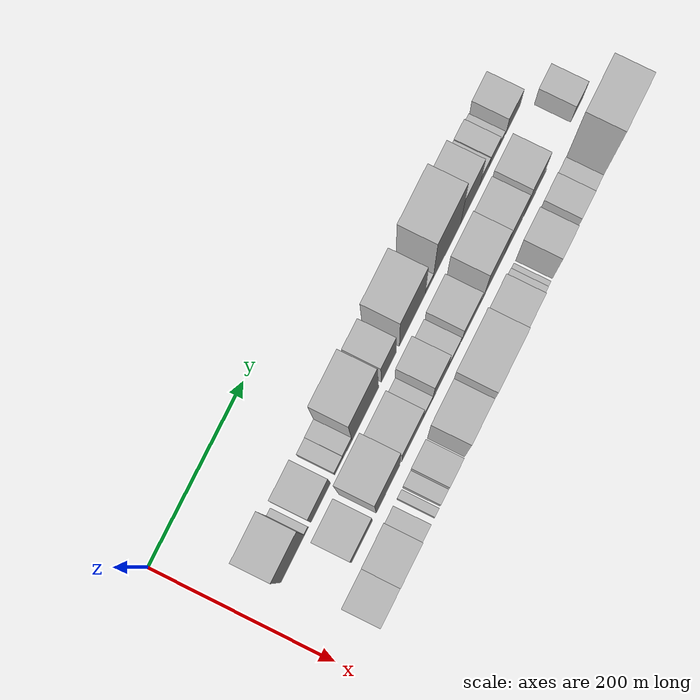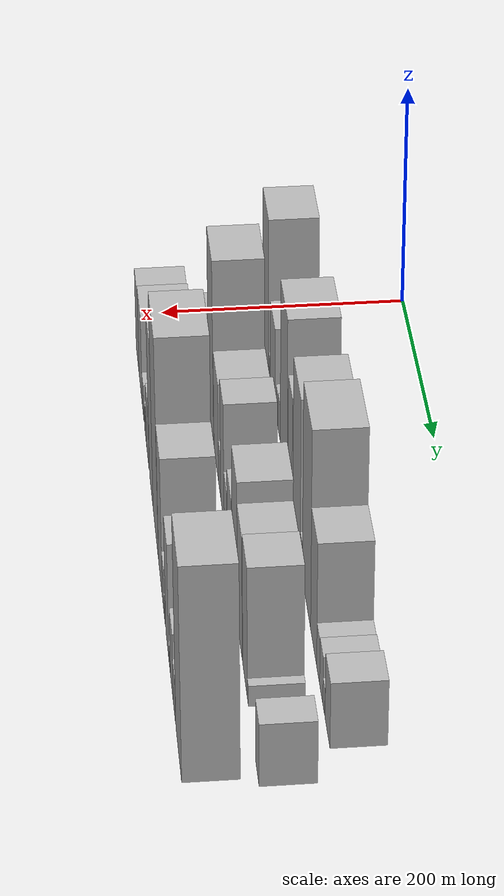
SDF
<sdf version="1.6">
 <world name="default">
  <model name="building_15">
   <static>1</static>
   <pose>100.0000 69.0616 0 0.000000 0.000000 0.000000</pose>
   <link name="link">
    <pose>0 0 70.50 0 0 0</pose>
    <collision name="collision"><geometry><box><size>40.0000 50.3987 141.0000</size></box></geometry></collision>
    <visual name="visual">
     <cast_shadows>0</cast_shadows>
     <geometry><box><size>40.0000 50.3987 141.0000</size></box></geometry>
     <material>
      <script>
       <uri>model://HANNAS_wall/materials/scripts</uri>
       <uri>model://HANNAS_wall/materials/textures</uri>
       <name>vrc/HANNAS_wall</name>
      </script>
     </material>
    </visual>
   </link>
  </model>
  <model name="building_16">
   <static>1</static>
   <pose>100.0000 98.4314 0 0.000000 0.000000 0.000000</pose>
   <link name="link">
    <pose>0 0 9.00 0 0 0</pose>
    <collision name="collision"><geometry><box><size>40.0000 8.3410 18.0000</size></box></geometry></collision>
    <visual name="visual">
     <cast_shadows>0</cast_shadows>
     <geometry><box><size>40.0000 8.3410 18.0000</size></box></geometry>
     <material>
      <script>
       <uri>model://HANNAS_wall/materials/scripts</uri>
       <uri>model://HANNAS_wall/materials/textures</uri>
       <name>vrc/HANNAS_wall</name>
      </script>
     </material>
    </visual>
   </link>
  </model>
  <model name="building_17">
   <static>1</static>
   <pose>100.0000 128.5890 0 0.000000 0.000000 0.000000</pose>
   <link name="link">
    <pose>0 0 37.50 0 0 0</pose>
    <collision name="collision"><geometry><box><size>40.0000 41.9741 75.0000</size></box></geometry></collision>
    <visual name="visual">
     <cast_shadows>0</cast_shadows>
     <geometry><box><size>40.0000 41.9741 75.0000</size></box></geometry>
     <material>
      <script>
       <uri>model://HANNAS_wall/materials/scripts</uri>
       <uri>model://HANNAS_wall/materials/textures</uri>
       <name>vrc/HANNAS_wall</name>
      </script>
     </material>
    </visual>
   </link>
  </model>
  <model name="building_18">
   <static>1</static>
   <pose>100.0000 167.4302 0 0.000000 0.000000 0.000000</pose>
   <link name="link">
    <pose>0 0 15.00 0 0 0</pose>
    <collision name="collision"><geometry><box><size>40.0000 17.7083 30.0000</size></box></geometry></collision>
    <visual name="visual">
     <cast_shadows>0</cast_shadows>
     <geometry><box><size>40.0000 17.7083 30.0000</size></box></geometry>
     <material>
      <script>
       <uri>model://HANNAS_wall/materials/scripts</uri>
       <uri>model://HANNAS_wall/materials/textures</uri>
       <name>vrc/HANNAS_wall</name>
      </script>
     </material>
    </visual>
   </link>
  </model>
  <model name="building_19">
   <static>1</static>
   <pose>100.0000 186.0254 0 0.000000 0.000000 0.000000</pose>
   <link name="link">
    <pose>0 0 16.50 0 0 0</pose>
    <collision name="collision"><geometry><box><size>40.0000 19.4821 33.0000</size></box></geometry></collision>
    <visual name="visual">
     <cast_shadows>0</cast_shadows>
     <geometry><box><size>40.0000 19.4821 33.0000</size></box></geometry>
     <material>
      <script>
       <uri>model://HANNAS_wall/materials/scripts</uri>
       <uri>model://HANNAS_wall/materials/textures</uri>
       <name>vrc/HANNAS_wall</name>
      </script>
     </material>
    </visual>
   </link>
  </model>
  <model name="building_20">
   <static>1</static>
   <pose>100.0000 224.3693 0 0.000000 0.000000 0.000000</pose>
   <link name="link">
    <pose>0 0 75.00 0 0 0</pose>
    <collision name="collision"><geometry><box><size>40.0000 57.2055 150.0000</size></box></geometry></collision>
    <visual name="visual">
     <cast_shadows>0</cast_shadows>
     <geometry><box><size>40.0000 57.2055 150.0000</size></box></geometry>
     <material>
      <script>
       <uri>model://HANNAS_wall/materials/scripts</uri>
       <uri>model://HANNAS_wall/materials/textures</uri>
       <name>vrc/HANNAS_wall</name>
      </script>
     </material>
    </visual>
   </link>
  </model>
  <model name="building_21">
   <static>1</static>
   <pose>100.0000 275.0208 0 0.000000 0.000000 0.000000</pose>
   <link name="link">
    <pose>0 0 52.50 0 0 0</pose>
    <collision name="collision"><geometry><box><size>40.0000 32.0976 105.0000</size></box></geometry></collision>
    <visual name="visual">
     <cast_shadows>0</cast_shadows>
     <geometry><box><size>40.0000 32.0976 105.0000</size></box></geometry>
     <material>
      <script>
       <uri>model://HANNAS_wall/materials/scripts</uri>
       <uri>model://HANNAS_wall/materials/textures</uri>
       <name>vrc/HANNAS_wall</name>
      </script>
     </material>
    </visual>
   </link>
  </model>
  <model name="building_22">
   <static>1</static>
   <pose>100.0000 326.3163 0 0.000000 0.000000 0.000000</pose>
   <link name="link">
    <pose>0 0 73.50 0 0 0</pose>
    <collision name="collision"><geometry><box><size>40.0000 56.4934 147.0000</size></box></geometry></collision>
    <visual name="visual">
     <cast_shadows>0</cast_shadows>
     <geometry><box><size>40.0000 56.4934 147.0000</size></box></geometry>
     <material>
      <script>
       <uri>model://HANNAS_wall/materials/scripts</uri>
       <uri>model://HANNAS_wall/materials/textures</uri>
       <name>vrc/HANNAS_wall</name>
      </script>
     </material>
    </visual>
   </link>
  </model>
  <model name="building_23">
   <static>1</static>
   <pose>100.0000 363.0550 0 0.000000 0.000000 0.000000</pose>
   <link name="link">
    <pose>0 0 15.00 0 0 0</pose>
    <collision name="collision"><geometry><box><size>40.0000 16.9841 30.0000</size></box></geometry></collision>
    <visual name="visual">
     <cast_shadows>0</cast_shadows>
     <geometry><box><size>40.0000 16.9841 30.0000</size></box></geometry>
     <material>
      <script>
       <uri>model://HANNAS_wall/materials/scripts</uri>
       <uri>model://HANNAS_wall/materials/textures</uri>
       <name>vrc/HANNAS_wall</name>
      </script>
     </material>
    </visual>
   </link>
  </model>
  <model name="building_24">
   <static>1</static>
   <pose>100.0000 401.9607 0 0.000000 0.000000 0.000000</pose>
   <link name="link">
    <pose>0 0 87.00 0 0 0</pose>
    <collision name="collision"><geometry><box><size>40.0000 60.8273 174.0000</size></box></geometry></collision>
    <visual name="visual">
     <cast_shadows>0</cast_shadows>
     <geometry><box><size>40.0000 60.8273 174.0000</size></box></geometry>
     <material>
      <script>
       <uri>model://HANNAS_wall/materials/scripts</uri>
       <uri>model://HANNAS_wall/materials/textures</uri>
       <name>vrc/HANNAS_wall</name>
      </script>
     </material>
    </visual>
   </link>
  </model>
  <model name="building_25">
   <static>1</static>
   <pose>100.0000 453.8556 0 0.000000 0.000000 0.000000</pose>
   <link name="link">
    <pose>0 0 54.00 0 0 0</pose>
    <collision name="collision"><geometry><box><size>40.0000 42.9626 108.0000</size></box></geometry></collision>
    <visual name="visual">
     <cast_shadows>0</cast_shadows>
     <geometry><box><size>40.0000 42.9626 108.0000</size></box></geometry>
     <material>
      <script>
       <uri>model://HANNAS_wall/materials/scripts</uri>
       <uri>model://HANNAS_wall/materials/textures</uri>
       <name>vrc/HANNAS_wall</name>
      </script>
     </material>
    </visual>
   </link>
  </model>
  <model name="building_26">
   <static>1</static>
   <pose>100.0000 485.6503 0 0.000000 0.000000 0.000000</pose>
   <link name="link">
    <pose>0 0 19.50 0 0 0</pose>
    <collision name="collision"><geometry><box><size>40.0000 20.6268 39.0000</size></box></geometry></collision>
    <visual name="visual">
     <cast_shadows>0</cast_shadows>
     <geometry><box><size>40.0000 20.6268 39.0000</size></box></geometry>
     <material>
      <script>
       <uri>model://HANNAS_wall/materials/scripts</uri>
       <uri>model://HANNAS_wall/materials/textures</uri>
       <name>vrc/HANNAS_wall</name>
      </script>
     </material>
    </visual>
   </link>
  </model>
  <model name="building_27">
   <static>1</static>
   <pose>100.0000 507.1280 0 0.000000 0.000000 0.000000</pose>
   <link name="link">
    <pose>0 0 21.00 0 0 0</pose>
    <collision name="collision"><geometry><box><size>40.0000 22.3287 42.0000</size></box></geometry></collision>
    <visual name="visual">
     <cast_shadows>0</cast_shadows>
     <geometry><box><size>40.0000 22.3287 42.0000</size></box></geometry>
     <material>
      <script>
       <uri>model://HANNAS_wall/materials/scripts</uri>
       <uri>model://HANNAS_wall/materials/textures</uri>
       <name>vrc/HANNAS_wall</name>
      </script>
     </material>
    </visual>
   </link>
  </model>
  <model name="building_28">
   <static>1</static>
   <pose>100.0000 524.1989 0 0.000000 0.000000 0.000000</pose>
   <link name="link">
    <pose>0 0 12.00 0 0 0</pose>
    <collision name="collision"><geometry><box><size>40.0000 11.8132 24.0000</size></box></geometry></collision>
    <visual name="visual">
     <cast_shadows>0</cast_shadows>
     <geometry><box><size>40.0000 11.8132 24.0000</size></box></geometry>
     <material>
      <script>
       <uri>model://HANNAS_wall/materials/scripts</uri>
       <uri>model://HANNAS_wall/materials/textures</uri>
       <name>vrc/HANNAS_wall</name>
      </script>
     </material>
    </visual>
   </link>
  </model>
  <model name="building_29">
   <static>1</static>
   <pose>100.0000 549.5464 0 0.000000 0.000000 0.000000</pose>
   <link name="link">
    <pose>0 0 28.50 0 0 0</pose>
    <collision name="collision"><geometry><box><size>40.0000 32.8817 57.0000</size></box></geometry></collision>
    <visual name="visual">
     <cast_shadows>0</cast_shadows>
     <geometry><box><size>40.0000 32.8817 57.0000</size></box></geometry>
     <material>
      <script>
       <uri>model://HANNAS_wall/materials/scripts</uri>
       <uri>model://HANNAS_wall/materials/textures</uri>
       <name>vrc/HANNAS_wall</name>
      </script>
     </material>
    </visual>
   </link>
  </model>
  <model name="building_46">
   <static>1</static>
   <pose>152.0000 113.2397 0 0.000000 0.000000 0.000000</pose>
   <link name="link">
    <pose>0 0 37.50 0 0 0</pose>
    <collision name="collision"><geometry><box><size>40.0000 44.7766 75.0000</size></box></geometry></collision>
    <visual name="visual">
     <cast_shadows>0</cast_shadows>
     <geometry><box><size>40.0000 44.7766 75.0000</size></box></geometry>
     <material>
      <script>
       <uri>model://HANNAS_wall/materials/scripts</uri>
       <uri>model://HANNAS_wall/materials/textures</uri>
       <name>vrc/HANNAS_wall</name>
      </script>
     </material>
    </visual>
   </link>
  </model>
  <model name="building_47">
   <static>1</static>
   <pose>152.0000 169.0955 0 0.000000 0.000000 0.000000</pose>
   <link name="link">
    <pose>0 0 84.00 0 0 0</pose>
    <collision name="collision"><geometry><box><size>40.0000 50.9350 168.0000</size></box></geometry></collision>
    <visual name="visual">
     <cast_shadows>0</cast_shadows>
     <geometry><box><size>40.0000 50.9350 168.0000</size></box></geometry>
     <material>
      <script>
       <uri>model://HANNAS_wall/materials/scripts</uri>
       <uri>model://HANNAS_wall/materials/textures</uri>
       <name>vrc/HANNAS_wall</name>
      </script>
     </material>
    </visual>
   </link>
  </model>
  <model name="building_48">
   <static>1</static>
   <pose>152.0000 221.7921 0 0.000000 0.000000 0.000000</pose>
   <link name="link">
    <pose>0 0 45.00 0 0 0</pose>
    <collision name="collision"><geometry><box><size>40.0000 46.4581 90.0000</size></box></geometry></collision>
    <visual name="visual">
     <cast_shadows>0</cast_shadows>
     <geometry><box><size>40.0000 46.4581 90.0000</size></box></geometry>
     <material>
      <script>
       <uri>model://HANNAS_wall/materials/scripts</uri>
       <uri>model://HANNAS_wall/materials/textures</uri>
       <name>vrc/HANNAS_wall</name>
      </script>
     </material>
    </visual>
   </link>
  </model>
  <model name="building_49">
   <static>1</static>
   <pose>152.0000 254.8681 0 0.000000 0.000000 0.000000</pose>
   <link name="link">
    <pose>0 0 19.50 0 0 0</pose>
    <collision name="collision"><geometry><box><size>40.0000 19.6941 39.0000</size></box></geometry></collision>
    <visual name="visual">
     <cast_shadows>0</cast_shadows>
     <geometry><box><size>40.0000 19.6941 39.0000</size></box></geometry>
     <material>
      <script>
       <uri>model://HANNAS_wall/materials/scripts</uri>
       <uri>model://HANNAS_wall/materials/textures</uri>
       <name>vrc/HANNAS_wall</name>
      </script>
     </material>
    </visual>
   </link>
  </model>
  <model name="building_50">
   <static>1</static>
   <pose>152.0000 281.5579 0 0.000000 0.000000 0.000000</pose>
   <link name="link">
    <pose>0 0 54.00 0 0 0</pose>
    <collision name="collision"><geometry><box><size>40.0000 33.6855 108.0000</size></box></geometry></collision>
    <visual name="visual">
     <cast_shadows>0</cast_shadows>
     <geometry><box><size>40.0000 33.6855 108.0000</size></box></geometry>
     <material>
      <script>
       <uri>model://HANNAS_wall/materials/scripts</uri>
       <uri>model://HANNAS_wall/materials/textures</uri>
       <name>vrc/HANNAS_wall</name>
      </script>
     </material>
    </visual>
   </link>
  </model>
  <model name="building_51">
   <static>1</static>
   <pose>152.0000 312.1706 0 0.000000 0.000000 0.000000</pose>
   <link name="link">
    <pose>0 0 24.00 0 0 0</pose>
    <collision name="collision"><geometry><box><size>40.0000 27.5398 48.0000</size></box></geometry></collision>
    <visual name="visual">
     <cast_shadows>0</cast_shadows>
     <geometry><box><size>40.0000 27.5398 48.0000</size></box></geometry>
     <material>
      <script>
       <uri>model://HANNAS_wall/materials/scripts</uri>
       <uri>model://HANNAS_wall/materials/textures</uri>
       <name>vrc/HANNAS_wall</name>
      </script>
     </material>
    </visual>
   </link>
  </model>
  <model name="building_52">
   <static>1</static>
   <pose>152.0000 349.2109 0 0.000000 0.000000 0.000000</pose>
   <link name="link">
    <pose>0 0 36.00 0 0 0</pose>
    <collision name="collision"><geometry><box><size>40.0000 40.5409 72.0000</size></box></geometry></collision>
    <visual name="visual">
     <cast_shadows>0</cast_shadows>
     <geometry><box><size>40.0000 40.5409 72.0000</size></box></geometry>
     <material>
      <script>
       <uri>model://HANNAS_wall/materials/scripts</uri>
       <uri>model://HANNAS_wall/materials/textures</uri>
       <name>vrc/HANNAS_wall</name>
      </script>
     </material>
    </visual>
   </link>
  </model>
  <model name="building_53">
   <static>1</static>
   <pose>152.0000 372.8206 0 0.000000 0.000000 0.000000</pose>
   <link name="link">
    <pose>0 0 7.50 0 0 0</pose>
    <collision name="collision"><geometry><box><size>40.0000 6.6785 15.0000</size></box></geometry></collision>
    <visual name="visual">
     <cast_shadows>0</cast_shadows>
     <geometry><box><size>40.0000 6.6785 15.0000</size></box></geometry>
     <material>
      <script>
       <uri>model://HANNAS_wall/materials/scripts</uri>
       <uri>model://HANNAS_wall/materials/textures</uri>
       <name>vrc/HANNAS_wall</name>
      </script>
     </material>
    </visual>
   </link>
  </model>
  <model name="building_54">
   <static>1</static>
   <pose>152.0000 399.4634 0 0.000000 0.000000 0.000000</pose>
   <link name="link">
    <pose>0 0 63.00 0 0 0</pose>
    <collision name="collision"><geometry><box><size>40.0000 46.6072 126.0000</size></box></geometry></collision>
    <visual name="visual">
     <cast_shadows>0</cast_shadows>
     <geometry><box><size>40.0000 46.6072 126.0000</size></box></geometry>
     <material>
      <script>
       <uri>model://HANNAS_wall/materials/scripts</uri>
       <uri>model://HANNAS_wall/materials/textures</uri>
       <name>vrc/HANNAS_wall</name>
      </script>
     </material>
    </visual>
   </link>
  </model>
  <model name="building_55">
   <static>1</static>
   <pose>152.0000 443.1474 0 0.000000 0.000000 0.000000</pose>
   <link name="link">
    <pose>0 0 54.00 0 0 0</pose>
    <collision name="collision"><geometry><box><size>40.0000 40.7608 108.0000</size></box></geometry></collision>
    <visual name="visual">
     <cast_shadows>0</cast_shadows>
     <geometry><box><size>40.0000 40.7608 108.0000</size></box></geometry>
     <material>
      <script>
       <uri>model://HANNAS_wall/materials/scripts</uri>
       <uri>model://HANNAS_wall/materials/textures</uri>
       <name>vrc/HANNAS_wall</name>
      </script>
     </material>
    </visual>
   </link>
  </model>
  <model name="building_56">
   <static>1</static>
   <pose>152.0000 487.0982 0 0.000000 0.000000 0.000000</pose>
   <link name="link">
    <pose>0 0 57.00 0 0 0</pose>
    <collision name="collision"><geometry><box><size>40.0000 39.1408 114.0000</size></box></geometry></collision>
    <visual name="visual">
     <cast_shadows>0</cast_shadows>
     <geometry><box><size>40.0000 39.1408 114.0000</size></box></geometry>
     <material>
      <script>
       <uri>model://HANNAS_wall/materials/scripts</uri>
       <uri>model://HANNAS_wall/materials/textures</uri>
       <name>vrc/HANNAS_wall</name>
      </script>
     </material>
    </visual>
   </link>
  </model>
  <model name="building_57">
   <static>1</static>
   <pose>152.0000 511.1476 0 0.000000 0.000000 0.000000</pose>
   <link name="link">
    <pose>0 0 9.00 0 0 0</pose>
    <collision name="collision"><geometry><box><size>40.0000 8.9579 18.0000</size></box></geometry></collision>
    <visual name="visual">
     <cast_shadows>0</cast_shadows>
     <geometry><box><size>40.0000 8.9579 18.0000</size></box></geometry>
     <material>
      <script>
       <uri>model://HANNAS_wall/materials/scripts</uri>
       <uri>model://HANNAS_wall/materials/textures</uri>
       <name>vrc/HANNAS_wall</name>
      </script>
     </material>
    </visual>
   </link>
  </model>
  <model name="building_58">
   <static>1</static>
   <pose>152.0000 587.4810 0 0.000000 0.000000 0.000000</pose>
   <link name="link">
    <pose>0 0 27.00 0 0 0</pose>
    <collision name="collision"><geometry><box><size>40.0000 27.9030 54.0000</size></box></geometry></collision>
    <visual name="visual">
     <cast_shadows>0</cast_shadows>
     <geometry><box><size>40.0000 27.9030 54.0000</size></box></geometry>
     <material>
      <script>
       <uri>model://HANNAS_wall/materials/scripts</uri>
       <uri>model://HANNAS_wall/materials/textures</uri>
       <name>vrc/HANNAS_wall</name>
      </script>
     </material>
    </visual>
   </link>
  </model>
  <model name="building_73">
   <static>1</static>
   <pose>204.0000 69.9652 0 0.000000 0.000000 0.000000</pose>
   <link name="link">
    <pose>0 0 37.50 0 0 0</pose>
    <collision name="collision"><geometry><box><size>40.0000 40.5713 75.0000</size></box></geometry></collision>
    <visual name="visual">
     <cast_shadows>0</cast_shadows>
     <geometry><box><size>40.0000 40.5713 75.0000</size></box></geometry>
     <material>
      <script>
       <uri>model://HANNAS_wall/materials/scripts</uri>
       <uri>model://HANNAS_wall/materials/textures</uri>
       <name>vrc/HANNAS_wall</name>
      </script>
     </material>
    </visual>
   </link>
  </model>
  <model name="building_74">
   <static>1</static>
   <pose>204.0000 113.3974 0 0.000000 0.000000 0.000000</pose>
   <link name="link">
    <pose>0 0 42.00 0 0 0</pose>
    <collision name="collision"><geometry><box><size>40.0000 46.2930 84.0000</size></box></geometry></collision>
    <visual name="visual">
     <cast_shadows>0</cast_shadows>
     <geometry><box><size>40.0000 46.2930 84.0000</size></box></geometry>
     <material>
      <script>
       <uri>model://HANNAS_wall/materials/scripts</uri>
       <uri>model://HANNAS_wall/materials/textures</uri>
       <name>vrc/HANNAS_wall</name>
      </script>
     </material>
    </visual>
   </link>
  </model>
  <model name="building_75">
   <static>1</static>
   <pose>204.0000 146.2859 0 0.000000 0.000000 0.000000</pose>
   <link name="link">
    <pose>0 0 16.50 0 0 0</pose>
    <collision name="collision"><geometry><box><size>40.0000 19.4841 33.0000</size></box></geometry></collision>
    <visual name="visual">
     <cast_shadows>0</cast_shadows>
     <geometry><box><size>40.0000 19.4841 33.0000</size></box></geometry>
     <material>
      <script>
       <uri>model://HANNAS_wall/materials/scripts</uri>
       <uri>model://HANNAS_wall/materials/textures</uri>
       <name>vrc/HANNAS_wall</name>
      </script>
     </material>
    </visual>
   </link>
  </model>
  <model name="building_76">
   <static>1</static>
   <pose>204.0000 168.8417 0 0.000000 0.000000 0.000000</pose>
   <link name="link">
    <pose>0 0 12.00 0 0 0</pose>
    <collision name="collision"><geometry><box><size>40.0000 9.6276 24.0000</size></box></geometry></collision>
    <visual name="visual">
     <cast_shadows>0</cast_shadows>
     <geometry><box><size>40.0000 9.6276 24.0000</size></box></geometry>
     <material>
      <script>
       <uri>model://HANNAS_wall/materials/scripts</uri>
       <uri>model://HANNAS_wall/materials/textures</uri>
       <name>vrc/HANNAS_wall</name>
      </script>
     </material>
    </visual>
   </link>
  </model>
  <model name="building_77">
   <static>1</static>
   <pose>204.0000 184.9723 0 0.000000 0.000000 0.000000</pose>
   <link name="link">
    <pose>0 0 15.00 0 0 0</pose>
    <collision name="collision"><geometry><box><size>40.0000 16.6336 30.0000</size></box></geometry></collision>
    <visual name="visual">
     <cast_shadows>0</cast_shadows>
     <geometry><box><size>40.0000 16.6336 30.0000</size></box></geometry>
     <material>
      <script>
       <uri>model://HANNAS_wall/materials/scripts</uri>
       <uri>model://HANNAS_wall/materials/textures</uri>
       <name>vrc/HANNAS_wall</name>
      </script>
     </material>
    </visual>
   </link>
  </model>
  <model name="building_78">
   <static>1</static>
   <pose>204.0000 208.5603 0 0.000000 0.000000 0.000000</pose>
   <link name="link">
    <pose>0 0 30.00 0 0 0</pose>
    <collision name="collision"><geometry><box><size>40.0000 30.5423 60.0000</size></box></geometry></collision>
    <visual name="visual">
     <cast_shadows>0</cast_shadows>
     <geometry><box><size>40.0000 30.5423 60.0000</size></box></geometry>
     <material>
      <script>
       <uri>model://HANNAS_wall/materials/scripts</uri>
       <uri>model://HANNAS_wall/materials/textures</uri>
       <name>vrc/HANNAS_wall</name>
      </script>
     </material>
    </visual>
   </link>
  </model>
  <model name="building_79">
   <static>1</static>
   <pose>204.0000 252.7823 0 0.000000 0.000000 0.000000</pose>
   <link name="link">
    <pose>0 0 73.50 0 0 0</pose>
    <collision name="collision"><geometry><box><size>40.0000 45.9017 147.0000</size></box></geometry></collision>
    <visual name="visual">
     <cast_shadows>0</cast_shadows>
     <geometry><box><size>40.0000 45.9017 147.0000</size></box></geometry>
     <material>
      <script>
       <uri>model://HANNAS_wall/materials/scripts</uri>
       <uri>model://HANNAS_wall/materials/textures</uri>
       <name>vrc/HANNAS_wall</name>
      </script>
     </material>
    </visual>
   </link>
  </model>
  <model name="building_80">
   <static>1</static>
   <pose>204.0000 306.9199 0 0.000000 0.000000 0.000000</pose>
   <link name="link">
    <pose>0 0 97.50 0 0 0</pose>
    <collision name="collision"><geometry><box><size>40.0000 62.3736 195.0000</size></box></geometry></collision>
    <visual name="visual">
     <cast_shadows>0</cast_shadows>
     <geometry><box><size>40.0000 62.3736 195.0000</size></box></geometry>
     <material>
      <script>
       <uri>model://HANNAS_wall/materials/scripts</uri>
       <uri>model://HANNAS_wall/materials/textures</uri>
       <name>vrc/HANNAS_wall</name>
      </script>
     </material>
    </visual>
   </link>
  </model>
  <model name="building_81">
   <static>1</static>
   <pose>204.0000 363.1764 0 0.000000 0.000000 0.000000</pose>
   <link name="link">
    <pose>0 0 61.50 0 0 0</pose>
    <collision name="collision"><geometry><box><size>40.0000 44.1395 123.0000</size></box></geometry></collision>
    <visual name="visual">
     <cast_shadows>0</cast_shadows>
     <geometry><box><size>40.0000 44.1395 123.0000</size></box></geometry>
     <material>
      <script>
       <uri>model://HANNAS_wall/materials/scripts</uri>
       <uri>model://HANNAS_wall/materials/textures</uri>
       <name>vrc/HANNAS_wall</name>
      </script>
     </material>
    </visual>
   </link>
  </model>
  <model name="building_82">
   <static>1</static>
   <pose>204.0000 396.3996 0 0.000000 0.000000 0.000000</pose>
   <link name="link">
    <pose>0 0 21.00 0 0 0</pose>
    <collision name="collision"><geometry><box><size>40.0000 22.3069 42.0000</size></box></geometry></collision>
    <visual name="visual">
     <cast_shadows>0</cast_shadows>
     <geometry><box><size>40.0000 22.3069 42.0000</size></box></geometry>
     <material>
      <script>
       <uri>model://HANNAS_wall/materials/scripts</uri>
       <uri>model://HANNAS_wall/materials/textures</uri>
       <name>vrc/HANNAS_wall</name>
      </script>
     </material>
    </visual>
   </link>
  </model>
  <model name="building_83">
   <static>1</static>
   <pose>204.0000 412.4388 0 0.000000 0.000000 0.000000</pose>
   <link name="link">
    <pose>0 0 10.50 0 0 0</pose>
    <collision name="collision"><geometry><box><size>40.0000 9.7714 21.0000</size></box></geometry></collision>
    <visual name="visual">
     <cast_shadows>0</cast_shadows>
     <geometry><box><size>40.0000 9.7714 21.0000</size></box></geometry>
     <material>
      <script>
       <uri>model://HANNAS_wall/materials/scripts</uri>
       <uri>model://HANNAS_wall/materials/textures</uri>
       <name>vrc/HANNAS_wall</name>
      </script>
     </material>
    </visual>
   </link>
  </model>
  <model name="building_84">
   <static>1</static>
   <pose>204.0000 441.6722 0 0.000000 0.000000 0.000000</pose>
   <link name="link">
    <pose>0 0 51.00 0 0 0</pose>
    <collision name="collision"><geometry><box><size>40.0000 34.6955 102.0000</size></box></geometry></collision>
    <visual name="visual">
     <cast_shadows>0</cast_shadows>
     <geometry><box><size>40.0000 34.6955 102.0000</size></box></geometry>
     <material>
      <script>
       <uri>model://HANNAS_wall/materials/scripts</uri>
       <uri>model://HANNAS_wall/materials/textures</uri>
       <name>vrc/HANNAS_wall</name>
      </script>
     </material>
    </visual>
   </link>
  </model>
  <model name="building_85">
   <static>1</static>
   <pose>204.0000 463.4466 0 0.000000 0.000000 0.000000</pose>
   <link name="link">
    <pose>0 0 9.00 0 0 0</pose>
    <collision name="collision"><geometry><box><size>40.0000 8.8532 18.0000</size></box></geometry></collision>
    <visual name="visual">
     <cast_shadows>0</cast_shadows>
     <geometry><box><size>40.0000 8.8532 18.0000</size></box></geometry>
     <material>
      <script>
       <uri>model://HANNAS_wall/materials/scripts</uri>
       <uri>model://HANNAS_wall/materials/textures</uri>
       <name>vrc/HANNAS_wall</name>
      </script>
     </material>
    </visual>
   </link>
  </model>
  <model name="building_86">
   <static>1</static>
   <pose>204.0000 472.0751 0 0.000000 0.000000 0.000000</pose>
   <link name="link">
    <pose>0 0 9.00 0 0 0</pose>
    <collision name="collision"><geometry><box><size>40.0000 8.4040 18.0000</size></box></geometry></collision>
    <visual name="visual">
     <cast_shadows>0</cast_shadows>
     <geometry><box><size>40.0000 8.4040 18.0000</size></box></geometry>
     <material>
      <script>
       <uri>model://HANNAS_wall/materials/scripts</uri>
       <uri>model://HANNAS_wall/materials/textures</uri>
       <name>vrc/HANNAS_wall</name>
      </script>
     </material>
    </visual>
   </link>
  </model>
  <model name="building_87">
   <static>1</static>
   <pose>204.0000 491.3725 0 0.000000 0.000000 0.000000</pose>
   <link name="link">
    <pose>0 0 30.00 0 0 0</pose>
    <collision name="collision"><geometry><box><size>40.0000 30.1907 60.0000</size></box></geometry></collision>
    <visual name="visual">
     <cast_shadows>0</cast_shadows>
     <geometry><box><size>40.0000 30.1907 60.0000</size></box></geometry>
     <material>
      <script>
       <uri>model://HANNAS_wall/materials/scripts</uri>
       <uri>model://HANNAS_wall/materials/textures</uri>
       <name>vrc/HANNAS_wall</name>
      </script>
     </material>
    </visual>
   </link>
  </model>
  <model name="building_88">
   <static>1</static>
   <pose>204.0000 517.8016 0 0.000000 0.000000 0.000000</pose>
   <link name="link">
    <pose>0 0 19.50 0 0 0</pose>
    <collision name="collision"><geometry><box><size>40.0000 22.6675 39.0000</size></box></geometry></collision>
    <visual name="visual">
     <cast_shadows>0</cast_shadows>
     <geometry><box><size>40.0000 22.6675 39.0000</size></box></geometry>
     <material>
      <script>
       <uri>model://HANNAS_wall/materials/scripts</uri>
       <uri>model://HANNAS_wall/materials/textures</uri>
       <name>vrc/HANNAS_wall</name>
      </script>
     </material>
    </visual>
   </link>
  </model>
  <model name="building_89">
   <static>1</static>
   <pose>204.0000 562.9286 0 0.000000 0.000000 0.000000</pose>
   <link name="link">
    <pose>0 0 91.50 0 0 0</pose>
    <collision name="collision"><geometry><box><size>40.0000 59.5865 183.0000</size></box></geometry></collision>
    <visual name="visual">
     <cast_shadows>0</cast_shadows>
     <geometry><box><size>40.0000 59.5865 183.0000</size></box></geometry>
     <material>
      <script>
       <uri>model://HANNAS_wall/materials/scripts</uri>
       <uri>model://HANNAS_wall/materials/textures</uri>
       <name>vrc/HANNAS_wall</name>
      </script>
     </material>
    </visual>
   </link>
  </model>
 </world>
</sdf>
